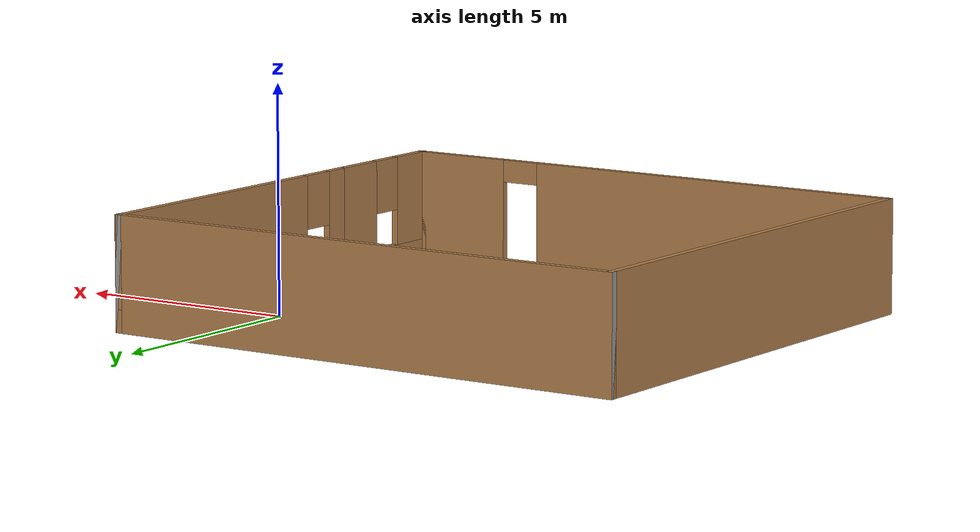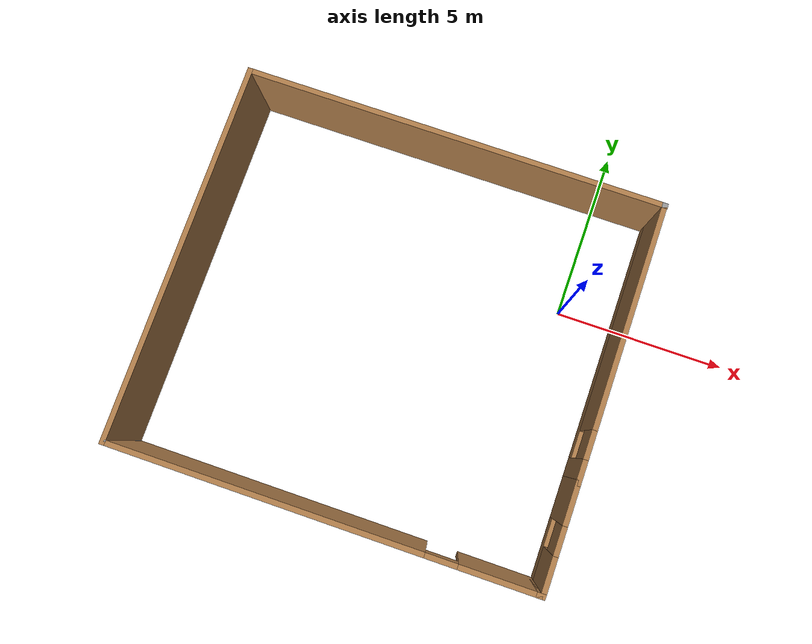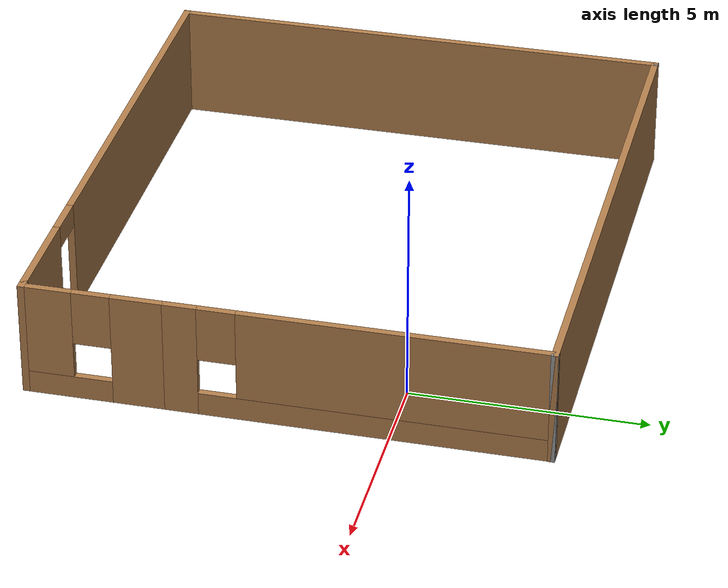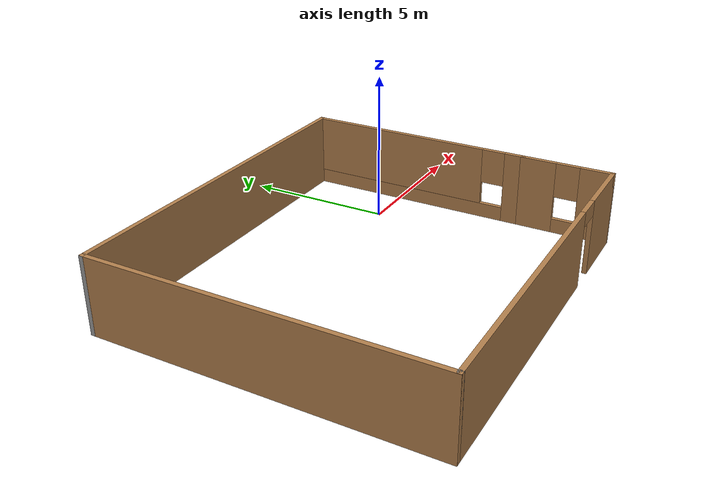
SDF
<?xml version='1.0'?>
<sdf version='1.7'>
  <model name='my_world2'>
    <pose>-4.39929 -2.13467 0 0 -0 0</pose>
    <link name='Wall_10'>
      <pose>-0.045 -5.425 0 0 -0 0</pose>
      <visual name='Wall_10_Visual_0'>
        <pose>-1.58882 0 1.25 0 -0 0</pose>
        <geometry>
          <box>
            <size>8.96236 0.15 2.5</size>
          </box>
        </geometry>
        <material>
          <script>
            <uri>file://media/materials/scripts/gazebo.material</uri>
            <name>Gazebo/Wood</name>
          </script>
          <ambient>1 1 1 1</ambient>
        </material>
        <meta>
          <layer>0</layer>
        </meta>
      </visual>
      <collision name='Wall_10_Collision_0'>
        <geometry>
          <box>
            <size>8.96236 0.15 2.5</size>
          </box>
        </geometry>
        <pose>-1.58882 0 1.25 0 -0 0</pose>
      </collision>
      <visual name='Wall_10_Visual_1'>
        <pose>4.93118 0 1.25 0 -0 0</pose>
        <geometry>
          <box>
            <size>2.27764 0.15 2.5</size>
          </box>
        </geometry>
        <material>
          <script>
            <uri>file://media/materials/scripts/gazebo.material</uri>
            <name>Gazebo/Wood</name>
          </script>
          <ambient>1 1 1 1</ambient>
        </material>
        <meta>
          <layer>0</layer>
        </meta>
      </visual>
      <collision name='Wall_10_Collision_1'>
        <geometry>
          <box>
            <size>2.27764 0.15 2.5</size>
          </box>
        </geometry>
        <pose>4.93118 0 1.25 0 -0 0</pose>
      </collision>
      <visual name='Wall_10_Visual_2'>
        <pose>3.34236 0 2.25 0 -0 0</pose>
        <geometry>
          <box>
            <size>0.9 0.15 0.5</size>
          </box>
        </geometry>
        <material>
          <script>
            <uri>file://media/materials/scripts/gazebo.material</uri>
            <name>Gazebo/Wood</name>
          </script>
          <ambient>1 1 1 1</ambient>
        </material>
        <meta>
          <layer>0</layer>
        </meta>
      </visual>
      <collision name='Wall_10_Collision_2'>
        <geometry>
          <box>
            <size>0.9 0.15 0.5</size>
          </box>
        </geometry>
        <pose>3.34236 0 2.25 0 -0 0</pose>
      </collision>
    </link>
    <link name='Wall_11'>
      <collision name='Wall_11_Collision'>
        <geometry>
          <box>
            <size>0.25 0.15 2.5</size>
          </box>
        </geometry>
        <pose>0 0 1.25 0 -0 0</pose>
      </collision>
      <visual name='Wall_11_Visual'>
        <pose>0 0 1.25 0 -0 0</pose>
        <geometry>
          <box>
            <size>0.25 0.15 2.5</size>
          </box>
        </geometry>
        <material>
          <script>
            <uri>file://media/materials/scripts/gazebo.material</uri>
            <name>Gazebo/Wood</name>
          </script>
          <ambient>1 1 1 1</ambient>
        </material>
        <meta>
          <layer>0</layer>
        </meta>
      </visual>
      <pose>5.99 -5.425 0 0 -0 0</pose>
    </link>
    <link name='Wall_13'>
      <pose>6.04 -3.85 0 0 -0 -1.5708</pose>
      <visual name='Wall_13_Visual_0'>
        <pose>-0.88435 0 1.25 0 -0 0</pose>
        <geometry>
          <box>
            <size>1.2313 0.15 2.5</size>
          </box>
        </geometry>
        <material>
          <script>
            <uri>file://media/materials/scripts/gazebo.material</uri>
            <name>Gazebo/Wood</name>
          </script>
          <ambient>1 1 1 1</ambient>
        </material>
        <meta>
          <layer>0</layer>
        </meta>
      </visual>
      <collision name='Wall_13_Collision_0'>
        <geometry>
          <box>
            <size>1.2313 0.15 2.5</size>
          </box>
        </geometry>
        <pose>-0.88435 0 1.25 0 -0 0</pose>
      </collision>
      <visual name='Wall_13_Visual_1'>
        <pose>0.61565 0 0.25 0 -0 0</pose>
        <geometry>
          <box>
            <size>1.7687 0.15 0.5</size>
          </box>
        </geometry>
        <material>
          <script>
            <uri>file://media/materials/scripts/gazebo.material</uri>
            <name>Gazebo/Wood</name>
          </script>
          <ambient>1 1 1 1</ambient>
        </material>
        <meta>
          <layer>0</layer>
        </meta>
      </visual>
      <collision name='Wall_13_Collision_1'>
        <geometry>
          <box>
            <size>1.7687 0.15 0.5</size>
          </box>
        </geometry>
        <pose>0.61565 0 0.25 0 -0 0</pose>
      </collision>
      <visual name='Wall_13_Visual_2'>
        <pose>1.01565 0 1.5 0 -0 0</pose>
        <geometry>
          <box>
            <size>0.968701 0.15 2</size>
          </box>
        </geometry>
        <material>
          <script>
            <uri>file://media/materials/scripts/gazebo.material</uri>
            <name>Gazebo/Wood</name>
          </script>
          <ambient>1 1 1 1</ambient>
        </material>
        <meta>
          <layer>0</layer>
        </meta>
      </visual>
      <collision name='Wall_13_Collision_2'>
        <geometry>
          <box>
            <size>0.968701 0.15 2</size>
          </box>
        </geometry>
        <pose>1.01565 0 1.5 0 -0 0</pose>
      </collision>
      <visual name='Wall_13_Visual_3'>
        <pose>0.131299 0 1.9 0 -0 0</pose>
        <geometry>
          <box>
            <size>0.8 0.15 1.2</size>
          </box>
        </geometry>
        <material>
          <script>
            <uri>file://media/materials/scripts/gazebo.material</uri>
            <name>Gazebo/Wood</name>
          </script>
          <ambient>1 1 1 1</ambient>
        </material>
        <meta>
          <layer>0</layer>
        </meta>
      </visual>
      <collision name='Wall_13_Collision_3'>
        <geometry>
          <box>
            <size>0.8 0.15 1.2</size>
          </box>
        </geometry>
        <pose>0.131299 0 1.9 0 -0 0</pose>
      </collision>
    </link>
    <link name='Wall_4'>
      <pose>6.04 1.5 0 0 -0 1.5708</pose>
      <visual name='Wall_4_Visual_0'>
        <pose>-3.64638 0 1.25 0 -0 0</pose>
        <geometry>
          <box>
            <size>0.70723 0.15 2.5</size>
          </box>
        </geometry>
        <material>
          <script>
            <uri>file://media/materials/scripts/gazebo.material</uri>
            <name>Gazebo/Wood</name>
          </script>
          <ambient>1 1 1 1</ambient>
        </material>
        <meta>
          <layer>0</layer>
        </meta>
      </visual>
      <collision name='Wall_4_Collision_0'>
        <geometry>
          <box>
            <size>0.70723 0.15 2.5</size>
          </box>
        </geometry>
        <pose>-3.64638 0 1.25 0 -0 0</pose>
      </collision>
      <visual name='Wall_4_Visual_1'>
        <pose>0.353615 0 0.25 0 -0 0</pose>
        <geometry>
          <box>
            <size>7.29277 0.15 0.5</size>
          </box>
        </geometry>
        <material>
          <script>
            <uri>file://media/materials/scripts/gazebo.material</uri>
            <name>Gazebo/Wood</name>
          </script>
          <ambient>1 1 1 1</ambient>
        </material>
        <meta>
          <layer>0</layer>
        </meta>
      </visual>
      <collision name='Wall_4_Collision_1'>
        <geometry>
          <box>
            <size>7.29277 0.15 0.5</size>
          </box>
        </geometry>
        <pose>0.353615 0 0.25 0 -0 0</pose>
      </collision>
      <visual name='Wall_4_Visual_2'>
        <pose>0.753615 0 1.5 0 -0 0</pose>
        <geometry>
          <box>
            <size>6.49277 0.15 2</size>
          </box>
        </geometry>
        <material>
          <script>
            <uri>file://media/materials/scripts/gazebo.material</uri>
            <name>Gazebo/Wood</name>
          </script>
          <ambient>1 1 1 1</ambient>
        </material>
        <meta>
          <layer>0</layer>
        </meta>
      </visual>
      <collision name='Wall_4_Collision_2'>
        <geometry>
          <box>
            <size>6.49277 0.15 2</size>
          </box>
        </geometry>
        <pose>0.753615 0 1.5 0 -0 0</pose>
      </collision>
      <visual name='Wall_4_Visual_3'>
        <pose>-2.89277 0 1.9 0 -0 0</pose>
        <geometry>
          <box>
            <size>0.8 0.15 1.2</size>
          </box>
        </geometry>
        <material>
          <script>
            <uri>file://media/materials/scripts/gazebo.material</uri>
            <name>Gazebo/Wood</name>
          </script>
          <ambient>1 1 1 1</ambient>
        </material>
        <meta>
          <layer>0</layer>
        </meta>
      </visual>
      <collision name='Wall_4_Collision_3'>
        <geometry>
          <box>
            <size>0.8 0.15 1.2</size>
          </box>
        </geometry>
        <pose>-2.89277 0 1.9 0 -0 0</pose>
      </collision>
    </link>
    <link name='Wall_5'>
      <collision name='Wall_5_Collision'>
        <geometry>
          <box>
            <size>0.16 0.15 2.5</size>
          </box>
        </geometry>
        <pose>0 0 1.25 0 -0 0</pose>
      </collision>
      <visual name='Wall_5_Visual'>
        <pose>0 0 1.25 0 -0 0</pose>
        <geometry>
          <box>
            <size>0.16 0.15 2.5</size>
          </box>
        </geometry>
        <material>
          <script>
            <uri>file://media/materials/scripts/gazebo.material</uri>
            <name>Gazebo/Grey</name>
          </script>
          <ambient>1 1 1 1</ambient>
        </material>
        <meta>
          <layer>0</layer>
        </meta>
      </visual>
      <pose>6.045 5.425 0 0 -0 0</pose>
    </link>
    <link name='Wall_6'>
      <collision name='Wall_6_Collision'>
        <geometry>
          <box>
            <size>12.25 0.15 2.5</size>
          </box>
        </geometry>
        <pose>0 0 1.25 0 -0 0</pose>
      </collision>
      <visual name='Wall_6_Visual'>
        <pose>0 0 1.25 0 -0 0</pose>
        <geometry>
          <box>
            <size>12.25 0.15 2.5</size>
          </box>
        </geometry>
        <material>
          <script>
            <uri>file://media/materials/scripts/gazebo.material</uri>
            <name>Gazebo/Wood</name>
          </script>
          <ambient>1 1 1 1</ambient>
        </material>
        <meta>
          <layer>0</layer>
        </meta>
      </visual>
      <pose>0 5.425 0 0 -0 3.14159</pose>
    </link>
    <link name='Wall_7'>
      <collision name='Wall_7_Collision'>
        <geometry>
          <box>
            <size>0.15 0.15 2.5</size>
          </box>
        </geometry>
        <pose>0 0 1.25 0 -0 0</pose>
      </collision>
      <visual name='Wall_7_Visual'>
        <pose>0 0 1.25 0 -0 0</pose>
        <geometry>
          <box>
            <size>0.15 0.15 2.5</size>
          </box>
        </geometry>
        <material>
          <script>
            <uri>file://media/materials/scripts/gazebo.material</uri>
            <name>Gazebo/Grey</name>
          </script>
          <ambient>1 1 1 1</ambient>
        </material>
        <meta>
          <layer>0</layer>
        </meta>
      </visual>
      <pose>-6.05 5.425 0 0 -0 0</pose>
    </link>
    <link name='Wall_8'>
      <collision name='Wall_8_Collision'>
        <geometry>
          <box>
            <size>11 0.15 2.5</size>
          </box>
        </geometry>
        <pose>0 0 1.25 0 -0 0</pose>
      </collision>
      <visual name='Wall_8_Visual'>
        <pose>0 0 1.25 0 -0 0</pose>
        <geometry>
          <box>
            <size>11 0.15 2.5</size>
          </box>
        </geometry>
        <material>
          <script>
            <uri>file://media/materials/scripts/gazebo.material</uri>
            <name>Gazebo/Wood</name>
          </script>
          <ambient>1 1 1 1</ambient>
        </material>
        <meta>
          <layer>0</layer>
        </meta>
      </visual>
      <pose>-6.05 0 0 0 -0 -1.5708</pose>
    </link>
    <link name='Wall_9'>
      <collision name='Wall_9_Collision'>
        <geometry>
          <box>
            <size>0.16 0.15 2.5</size>
          </box>
        </geometry>
        <pose>0 0 1.25 0 -0 0</pose>
      </collision>
      <visual name='Wall_9_Visual'>
        <pose>0 0 1.25 0 -0 0</pose>
        <geometry>
          <box>
            <size>0.16 0.15 2.5</size>
          </box>
        </geometry>
        <material>
          <script>
            <uri>file://media/materials/scripts/gazebo.material</uri>
            <name>Gazebo/Grey</name>
          </script>
          <ambient>1 1 1 1</ambient>
        </material>
        <meta>
          <layer>0</layer>
        </meta>
      </visual>
      <pose>-6.045 -5.425 0 0 -0 0</pose>
    </link>
    <static>1</static>
  </model>
</sdf>
